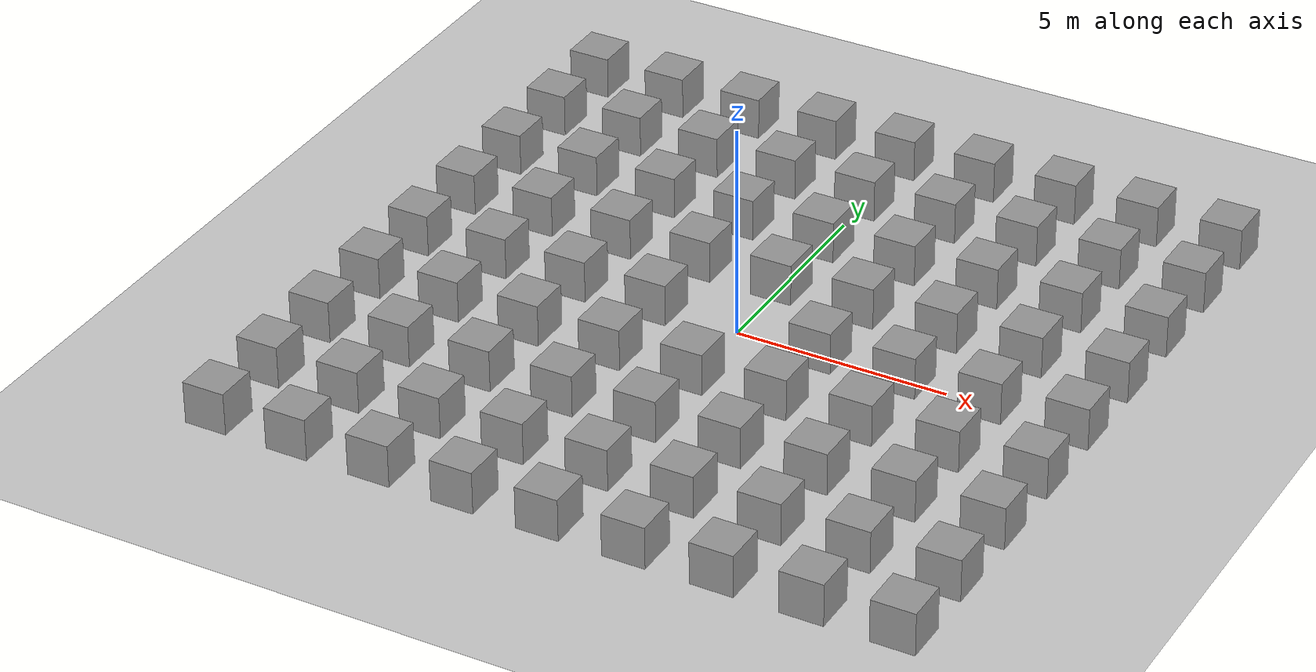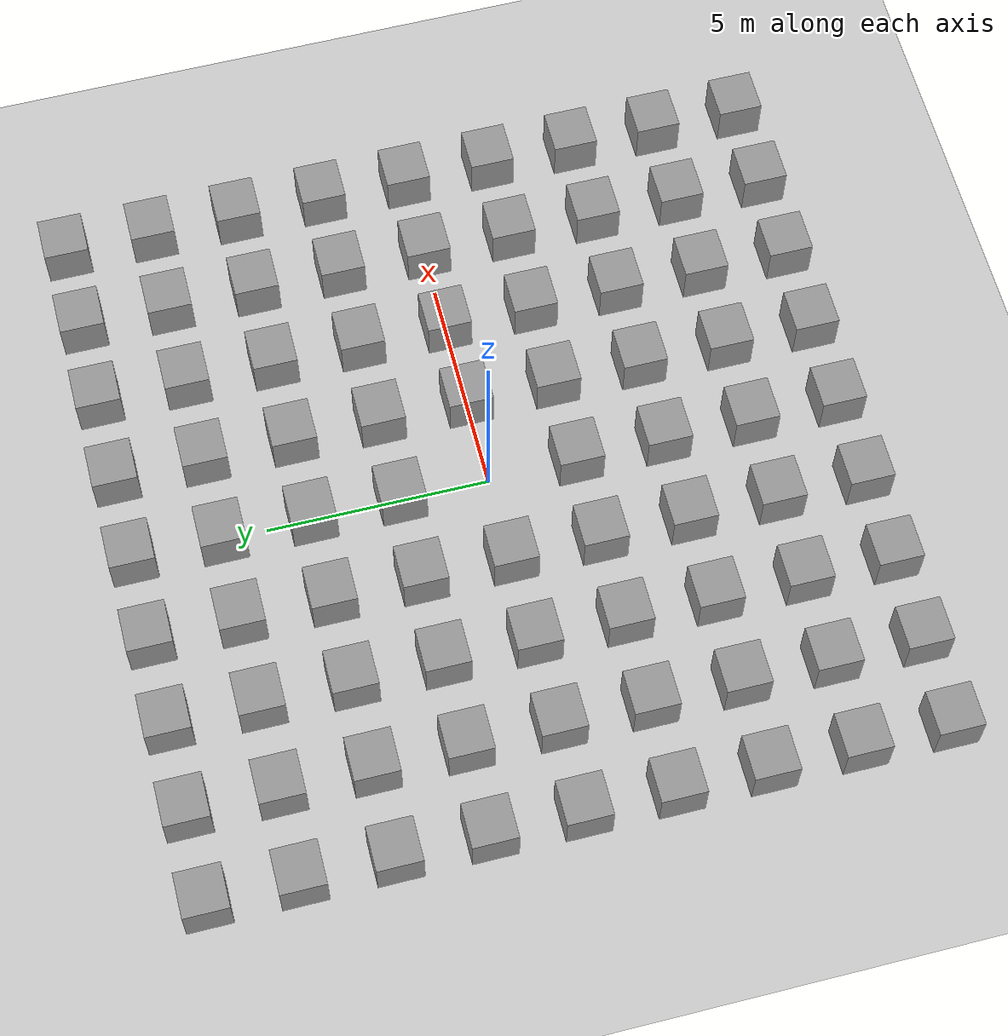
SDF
<sdf version="1.7">
 <world name="default">
  <scene><ambient>0.4 0.4 0.4 1</ambient><background>0.7 0.7 0.7 1</background><shadows>1</shadows></scene>
  <light name="sun" type="directional">
   <pose>0 0 10 0 -0 0</pose>
   <diffuse>0.8 0.8 0.8 1</diffuse>
   <specular>0.2 0.2 0.2 1</specular>
   <attenuation>
    <range>1000</range>
    <constant>0.9</constant>
    <linear>0.01</linear>
    <quadratic>0.001</quadratic>
   </attenuation>
   <direction>-0.5 0.1 -0.9</direction>
   <spot><inner_angle>0</inner_angle><outer_angle>0</outer_angle><falloff>0</falloff></spot>
  </light>
  <model name="ground_plane">
   <static>1</static>
   <link name="link">
    <collision name="collision">
     <geometry><plane><normal>0 0 1</normal><size>100 100</size></plane></geometry>
     <surface>
      <contact><collide_bitmask>65535</collide_bitmask></contact>
      <friction><ode><mu>100</mu><mu2>50</mu2></ode></friction>
     </surface>
    </collision>
    <visual name="visual">
     <cast_shadows>0</cast_shadows>
     <geometry><plane><normal>0 0 1</normal><size>100 100</size></plane></geometry>
     <material>
      <script><uri>file://media/materials/scripts/gazebo.material</uri><name>Gazebo/Grey</name></script>
     </material>
    </visual>
   </link>
  </model>
  <physics type="ode">
   <real_time_update_rate>1000</real_time_update_rate>
   <max_step_size>0.001</max_step_size>
   <real_time_factor>1</real_time_factor>
   <ode>
    <solver>
     <type>quick</type>
     <iters>150</iters>
     <precon_iters>0</precon_iters>
     <sor>1.4</sor>
     <use_dynamic_moi_rescaling>1</use_dynamic_moi_rescaling>
    </solver>
    <constraints>
     <cfm>1e-05</cfm>
     <erp>0.2</erp>
     <contact_max_correcting_vel>2000</contact_max_correcting_vel>
     <contact_surface_layer>0.01</contact_surface_layer>
    </constraints>
   </ode>
  </physics>
  <gravity>0 0 -9.8</gravity>
  <magnetic_field>6e-06 2.3e-05 -4.2e-05</magnetic_field>
  <atmosphere type="adiabatic"/>
  <spherical_coordinates>
   <surface_model>EARTH_WGS84</surface_model>
   <latitude_deg>0</latitude_deg>
   <longitude_deg>0</longitude_deg>
   <elevation>0</elevation>
   <heading_deg>0</heading_deg>
  </spherical_coordinates>
  <model name="unit_box">
   <pose>-8 -8 0.5 0 -0 0</pose>
   <link name="link">
    <inertial>
     <mass>1</mass>
     <inertia>
      <ixx>0.166667</ixx>
      <ixy>0</ixy>
      <ixz>0</ixz>
      <iyy>0.166667</iyy>
      <iyz>0</iyz>
      <izz>0.166667</izz>
     </inertia>
    </inertial>
    <collision name="collision"><geometry><box><size>1 1 1</size></box></geometry></collision>
    <visual name="visual">
     <geometry><box><size>1 1 1</size></box></geometry>
     <material>
      <script><name>Gazebo/Grey</name><uri>file://media/materials/scripts/gazebo.material</uri></script>
     </material>
    </visual>
   </link>
  </model>
  <model name="unit_box_1">
   <pose>-8 -6 0.5 0 -0 0</pose>
   <link name="link">
    <inertial>
     <mass>1</mass>
     <inertia>
      <ixx>0.166667</ixx>
      <ixy>0</ixy>
      <ixz>0</ixz>
      <iyy>0.166667</iyy>
      <iyz>0</iyz>
      <izz>0.166667</izz>
     </inertia>
    </inertial>
    <collision name="collision"><geometry><box><size>1 1 1</size></box></geometry></collision>
    <visual name="visual">
     <geometry><box><size>1 1 1</size></box></geometry>
     <material>
      <script><name>Gazebo/Grey</name><uri>file://media/materials/scripts/gazebo.material</uri></script>
     </material>
    </visual>
   </link>
  </model>
  <model name="unit_box_2">
   <pose>-8 -4 0.5 0 -0 0</pose>
   <link name="link">
    <inertial>
     <mass>1</mass>
     <inertia>
      <ixx>0.166667</ixx>
      <ixy>0</ixy>
      <ixz>0</ixz>
      <iyy>0.166667</iyy>
      <iyz>0</iyz>
      <izz>0.166667</izz>
     </inertia>
    </inertial>
    <collision name="collision"><geometry><box><size>1 1 1</size></box></geometry></collision>
    <visual name="visual">
     <geometry><box><size>1 1 1</size></box></geometry>
     <material>
      <script><name>Gazebo/Grey</name><uri>file://media/materials/scripts/gazebo.material</uri></script>
     </material>
    </visual>
   </link>
  </model>
  <model name="unit_box_3">
   <pose>-8 -2 0.5 0 -0 0</pose>
   <link name="link">
    <inertial>
     <mass>1</mass>
     <inertia>
      <ixx>0.166667</ixx>
      <ixy>0</ixy>
      <ixz>0</ixz>
      <iyy>0.166667</iyy>
      <iyz>0</iyz>
      <izz>0.166667</izz>
     </inertia>
    </inertial>
    <collision name="collision"><geometry><box><size>1 1 1</size></box></geometry></collision>
    <visual name="visual">
     <geometry><box><size>1 1 1</size></box></geometry>
     <material>
      <script><name>Gazebo/Grey</name><uri>file://media/materials/scripts/gazebo.material</uri></script>
     </material>
    </visual>
   </link>
  </model>
  <model name="unit_box_0">
   <pose>-8 0 0.5 0 -0 0</pose>
   <link name="link">
    <inertial>
     <mass>1</mass>
     <inertia>
      <ixx>0.166667</ixx>
      <ixy>0</ixy>
      <ixz>0</ixz>
      <iyy>0.166667</iyy>
      <iyz>0</iyz>
      <izz>0.166667</izz>
     </inertia>
    </inertial>
    <collision name="collision"><geometry><box><size>1 1 1</size></box></geometry></collision>
    <visual name="visual">
     <geometry><box><size>1 1 1</size></box></geometry>
     <material>
      <script><name>Gazebo/Grey</name><uri>file://media/materials/scripts/gazebo.material</uri></script>
     </material>
    </visual>
   </link>
  </model>
  <model name="unit_box_4">
   <pose>-8 2 0.5 0 -0 0</pose>
   <link name="link">
    <inertial>
     <mass>1</mass>
     <inertia>
      <ixx>0.166667</ixx>
      <ixy>0</ixy>
      <ixz>0</ixz>
      <iyy>0.166667</iyy>
      <iyz>0</iyz>
      <izz>0.166667</izz>
     </inertia>
    </inertial>
    <collision name="collision"><geometry><box><size>1 1 1</size></box></geometry></collision>
    <visual name="visual">
     <geometry><box><size>1 1 1</size></box></geometry>
     <material>
      <script><name>Gazebo/Grey</name><uri>file://media/materials/scripts/gazebo.material</uri></script>
     </material>
    </visual>
   </link>
  </model>
  <model name="unit_box_5">
   <pose>-8 4 0.5 0 -0 0</pose>
   <link name="link">
    <inertial>
     <mass>1</mass>
     <inertia>
      <ixx>0.166667</ixx>
      <ixy>0</ixy>
      <ixz>0</ixz>
      <iyy>0.166667</iyy>
      <iyz>0</iyz>
      <izz>0.166667</izz>
     </inertia>
    </inertial>
    <collision name="collision"><geometry><box><size>1 1 1</size></box></geometry></collision>
    <visual name="visual">
     <geometry><box><size>1 1 1</size></box></geometry>
     <material>
      <script><name>Gazebo/Grey</name><uri>file://media/materials/scripts/gazebo.material</uri></script>
     </material>
    </visual>
   </link>
  </model>
  <model name="unit_box_6">
   <pose>-8 6 0.5 0 -0 0</pose>
   <link name="link">
    <inertial>
     <mass>1</mass>
     <inertia>
      <ixx>0.166667</ixx>
      <ixy>0</ixy>
      <ixz>0</ixz>
      <iyy>0.166667</iyy>
      <iyz>0</iyz>
      <izz>0.166667</izz>
     </inertia>
    </inertial>
    <collision name="collision"><geometry><box><size>1 1 1</size></box></geometry></collision>
    <visual name="visual">
     <geometry><box><size>1 1 1</size></box></geometry>
     <material>
      <script><name>Gazebo/Grey</name><uri>file://media/materials/scripts/gazebo.material</uri></script>
     </material>
    </visual>
   </link>
  </model>
  <model name="unit_box_7">
   <pose>-8 8 0.5 0 -0 0</pose>
   <link name="link">
    <inertial>
     <mass>1</mass>
     <inertia>
      <ixx>0.166667</ixx>
      <ixy>0</ixy>
      <ixz>0</ixz>
      <iyy>0.166667</iyy>
      <iyz>0</iyz>
      <izz>0.166667</izz>
     </inertia>
    </inertial>
    <collision name="collision"><geometry><box><size>1 1 1</size></box></geometry></collision>
    <visual name="visual">
     <geometry><box><size>1 1 1</size></box></geometry>
     <material>
      <script><name>Gazebo/Grey</name><uri>file://media/materials/scripts/gazebo.material</uri></script>
     </material>
    </visual>
   </link>
  </model>
  <model name="unit_box_8">
   <pose>-6 -8 0.5 0 -0 0</pose>
   <link name="link">
    <inertial>
     <mass>1</mass>
     <inertia>
      <ixx>0.166667</ixx>
      <ixy>0</ixy>
      <ixz>0</ixz>
      <iyy>0.166667</iyy>
      <iyz>0</iyz>
      <izz>0.166667</izz>
     </inertia>
    </inertial>
    <collision name="collision"><geometry><box><size>1 1 1</size></box></geometry></collision>
    <visual name="visual">
     <geometry><box><size>1 1 1</size></box></geometry>
     <material>
      <script><name>Gazebo/Grey</name><uri>file://media/materials/scripts/gazebo.material</uri></script>
     </material>
    </visual>
   </link>
  </model>
  <model name="unit_box_9">
   <pose>-6 -6 0.5 0 -0 0</pose>
   <link name="link">
    <inertial>
     <mass>1</mass>
     <inertia>
      <ixx>0.166667</ixx>
      <ixy>0</ixy>
      <ixz>0</ixz>
      <iyy>0.166667</iyy>
      <iyz>0</iyz>
      <izz>0.166667</izz>
     </inertia>
    </inertial>
    <collision name="collision"><geometry><box><size>1 1 1</size></box></geometry></collision>
    <visual name="visual">
     <geometry><box><size>1 1 1</size></box></geometry>
     <material>
      <script><name>Gazebo/Grey</name><uri>file://media/materials/scripts/gazebo.material</uri></script>
     </material>
    </visual>
   </link>
  </model>
  <model name="unit_box_10">
   <pose>-6 -4 0.5 0 -0 0</pose>
   <link name="link">
    <inertial>
     <mass>1</mass>
     <inertia>
      <ixx>0.166667</ixx>
      <ixy>0</ixy>
      <ixz>0</ixz>
      <iyy>0.166667</iyy>
      <iyz>0</iyz>
      <izz>0.166667</izz>
     </inertia>
    </inertial>
    <collision name="collision"><geometry><box><size>1 1 1</size></box></geometry></collision>
    <visual name="visual">
     <geometry><box><size>1 1 1</size></box></geometry>
     <material>
      <script><name>Gazebo/Grey</name><uri>file://media/materials/scripts/gazebo.material</uri></script>
     </material>
    </visual>
   </link>
  </model>
  <model name="unit_box_11">
   <pose>-6 -2 0.5 0 -0 0</pose>
   <link name="link">
    <inertial>
     <mass>1</mass>
     <inertia>
      <ixx>0.166667</ixx>
      <ixy>0</ixy>
      <ixz>0</ixz>
      <iyy>0.166667</iyy>
      <iyz>0</iyz>
      <izz>0.166667</izz>
     </inertia>
    </inertial>
    <collision name="collision"><geometry><box><size>1 1 1</size></box></geometry></collision>
    <visual name="visual">
     <geometry><box><size>1 1 1</size></box></geometry>
     <material>
      <script><name>Gazebo/Grey</name><uri>file://media/materials/scripts/gazebo.material</uri></script>
     </material>
    </visual>
   </link>
  </model>
  <model name="unit_box_12">
   <pose>-6 -0 0.5 0 -0 0</pose>
   <link name="link">
    <inertial>
     <mass>1</mass>
     <inertia>
      <ixx>0.166667</ixx>
      <ixy>0</ixy>
      <ixz>0</ixz>
      <iyy>0.166667</iyy>
      <iyz>0</iyz>
      <izz>0.166667</izz>
     </inertia>
    </inertial>
    <collision name="collision"><geometry><box><size>1 1 1</size></box></geometry></collision>
    <visual name="visual">
     <geometry><box><size>1 1 1</size></box></geometry>
     <material>
      <script><name>Gazebo/Grey</name><uri>file://media/materials/scripts/gazebo.material</uri></script>
     </material>
    </visual>
   </link>
  </model>
  <model name="unit_box_13">
   <pose>-6 2 0.5 0 -0 0</pose>
   <link name="link">
    <inertial>
     <mass>1</mass>
     <inertia>
      <ixx>0.166667</ixx>
      <ixy>0</ixy>
      <ixz>0</ixz>
      <iyy>0.166667</iyy>
      <iyz>0</iyz>
      <izz>0.166667</izz>
     </inertia>
    </inertial>
    <collision name="collision"><geometry><box><size>1 1 1</size></box></geometry></collision>
    <visual name="visual">
     <geometry><box><size>1 1 1</size></box></geometry>
     <material>
      <script><name>Gazebo/Grey</name><uri>file://media/materials/scripts/gazebo.material</uri></script>
     </material>
    </visual>
   </link>
  </model>
  <model name="unit_box_14">
   <pose>-6 4 0.5 0 -0 0</pose>
   <link name="link">
    <inertial>
     <mass>1</mass>
     <inertia>
      <ixx>0.166667</ixx>
      <ixy>0</ixy>
      <ixz>0</ixz>
      <iyy>0.166667</iyy>
      <iyz>0</iyz>
      <izz>0.166667</izz>
     </inertia>
    </inertial>
    <collision name="collision"><geometry><box><size>1 1 1</size></box></geometry></collision>
    <visual name="visual">
     <geometry><box><size>1 1 1</size></box></geometry>
     <material>
      <script><name>Gazebo/Grey</name><uri>file://media/materials/scripts/gazebo.material</uri></script>
     </material>
    </visual>
   </link>
  </model>
  <model name="unit_box_15">
   <pose>-6 6 0.5 0 -0 0</pose>
   <link name="link">
    <inertial>
     <mass>1</mass>
     <inertia>
      <ixx>0.166667</ixx>
      <ixy>0</ixy>
      <ixz>0</ixz>
      <iyy>0.166667</iyy>
      <iyz>0</iyz>
      <izz>0.166667</izz>
     </inertia>
    </inertial>
    <collision name="collision"><geometry><box><size>1 1 1</size></box></geometry></collision>
    <visual name="visual">
     <geometry><box><size>1 1 1</size></box></geometry>
     <material>
      <script><name>Gazebo/Grey</name><uri>file://media/materials/scripts/gazebo.material</uri></script>
     </material>
    </visual>
   </link>
  </model>
  <model name="unit_box_16">
   <pose>-6 8 0.5 0 -0 0</pose>
   <link name="link">
    <inertial>
     <mass>1</mass>
     <inertia>
      <ixx>0.166667</ixx>
      <ixy>0</ixy>
      <ixz>0</ixz>
      <iyy>0.166667</iyy>
      <iyz>0</iyz>
      <izz>0.166667</izz>
     </inertia>
    </inertial>
    <collision name="collision"><geometry><box><size>1 1 1</size></box></geometry></collision>
    <visual name="visual">
     <geometry><box><size>1 1 1</size></box></geometry>
     <material>
      <script><name>Gazebo/Grey</name><uri>file://media/materials/scripts/gazebo.material</uri></script>
     </material>
    </visual>
   </link>
  </model>
  <model name="unit_box_17">
   <pose>-4 8 0.5 0 -0 0</pose>
   <link name="link">
    <inertial>
     <mass>1</mass>
     <inertia>
      <ixx>0.166667</ixx>
      <ixy>0</ixy>
      <ixz>0</ixz>
      <iyy>0.166667</iyy>
      <iyz>0</iyz>
      <izz>0.166667</izz>
     </inertia>
    </inertial>
    <collision name="collision"><geometry><box><size>1 1 1</size></box></geometry></collision>
    <visual name="visual">
     <geometry><box><size>1 1 1</size></box></geometry>
     <material>
      <script><name>Gazebo/Grey</name><uri>file://media/materials/scripts/gazebo.material</uri></script>
     </material>
    </visual>
   </link>
  </model>
  <model name="unit_box_18">
   <pose>-4 6 0.5 0 -0 0</pose>
   <link name="link">
    <inertial>
     <mass>1</mass>
     <inertia>
      <ixx>0.166667</ixx>
      <ixy>0</ixy>
      <ixz>0</ixz>
      <iyy>0.166667</iyy>
      <iyz>0</iyz>
      <izz>0.166667</izz>
     </inertia>
    </inertial>
    <collision name="collision"><geometry><box><size>1 1 1</size></box></geometry></collision>
    <visual name="visual">
     <geometry><box><size>1 1 1</size></box></geometry>
     <material>
      <script><name>Gazebo/Grey</name><uri>file://media/materials/scripts/gazebo.material</uri></script>
     </material>
    </visual>
   </link>
  </model>
  <model name="unit_box_19">
   <pose>-4 4 0.5 0 -0 0</pose>
   <link name="link">
    <inertial>
     <mass>1</mass>
     <inertia>
      <ixx>0.166667</ixx>
      <ixy>0</ixy>
      <ixz>0</ixz>
      <iyy>0.166667</iyy>
      <iyz>0</iyz>
      <izz>0.166667</izz>
     </inertia>
    </inertial>
    <collision name="collision"><geometry><box><size>1 1 1</size></box></geometry></collision>
    <visual name="visual">
     <geometry><box><size>1 1 1</size></box></geometry>
     <material>
      <script><name>Gazebo/Grey</name><uri>file://media/materials/scripts/gazebo.material</uri></script>
     </material>
    </visual>
   </link>
  </model>
  <model name="unit_box_20">
   <pose>-4 2 0.5 0 -0 0</pose>
   <link name="link">
    <inertial>
     <mass>1</mass>
     <inertia>
      <ixx>0.166667</ixx>
      <ixy>0</ixy>
      <ixz>0</ixz>
      <iyy>0.166667</iyy>
      <iyz>0</iyz>
      <izz>0.166667</izz>
     </inertia>
    </inertial>
    <collision name="collision"><geometry><box><size>1 1 1</size></box></geometry></collision>
    <visual name="visual">
     <geometry><box><size>1 1 1</size></box></geometry>
     <material>
      <script><name>Gazebo/Grey</name><uri>file://media/materials/scripts/gazebo.material</uri></script>
     </material>
    </visual>
   </link>
  </model>
  <model name="unit_box_21">
   <pose>-4 -0 0.5 0 -0 0</pose>
   <link name="link">
    <inertial>
     <mass>1</mass>
     <inertia>
      <ixx>0.166667</ixx>
      <ixy>0</ixy>
      <ixz>0</ixz>
      <iyy>0.166667</iyy>
      <iyz>0</iyz>
      <izz>0.166667</izz>
     </inertia>
    </inertial>
    <collision name="collision"><geometry><box><size>1 1 1</size></box></geometry></collision>
    <visual name="visual">
     <geometry><box><size>1 1 1</size></box></geometry>
     <material>
      <script><name>Gazebo/Grey</name><uri>file://media/materials/scripts/gazebo.material</uri></script>
     </material>
    </visual>
   </link>
  </model>
  <model name="unit_box_22">
   <pose>-4 -2 0.5 0 -0 0</pose>
   <link name="link">
    <inertial>
     <mass>1</mass>
     <inertia>
      <ixx>0.166667</ixx>
      <ixy>0</ixy>
      <ixz>0</ixz>
      <iyy>0.166667</iyy>
      <iyz>0</iyz>
      <izz>0.166667</izz>
     </inertia>
    </inertial>
    <collision name="collision"><geometry><box><size>1 1 1</size></box></geometry></collision>
    <visual name="visual">
     <geometry><box><size>1 1 1</size></box></geometry>
     <material>
      <script><name>Gazebo/Grey</name><uri>file://media/materials/scripts/gazebo.material</uri></script>
     </material>
    </visual>
   </link>
  </model>
  <model name="unit_box_23">
   <pose>-4 -4 0.5 0 -0 0</pose>
   <link name="link">
    <inertial>
     <mass>1</mass>
     <inertia>
      <ixx>0.166667</ixx>
      <ixy>0</ixy>
      <ixz>0</ixz>
      <iyy>0.166667</iyy>
      <iyz>0</iyz>
      <izz>0.166667</izz>
     </inertia>
    </inertial>
    <collision name="collision"><geometry><box><size>1 1 1</size></box></geometry></collision>
    <visual name="visual">
     <geometry><box><size>1 1 1</size></box></geometry>
     <material>
      <script><name>Gazebo/Grey</name><uri>file://media/materials/scripts/gazebo.material</uri></script>
     </material>
    </visual>
   </link>
  </model>
  <model name="unit_box_24">
   <pose>-4 -6 0.5 0 -0 0</pose>
   <link name="link">
    <inertial>
     <mass>1</mass>
     <inertia>
      <ixx>0.166667</ixx>
      <ixy>0</ixy>
      <ixz>0</ixz>
      <iyy>0.166667</iyy>
      <iyz>0</iyz>
      <izz>0.166667</izz>
     </inertia>
    </inertial>
    <collision name="collision"><geometry><box><size>1 1 1</size></box></geometry></collision>
    <visual name="visual">
     <geometry><box><size>1 1 1</size></box></geometry>
     <material>
      <script><name>Gazebo/Grey</name><uri>file://media/materials/scripts/gazebo.material</uri></script>
     </material>
    </visual>
   </link>
  </model>
  <model name="unit_box_25">
   <pose>-4 -8 0.5 0 -0 0</pose>
   <link name="link">
    <inertial>
     <mass>1</mass>
     <inertia>
      <ixx>0.166667</ixx>
      <ixy>0</ixy>
      <ixz>0</ixz>
      <iyy>0.166667</iyy>
      <iyz>0</iyz>
      <izz>0.166667</izz>
     </inertia>
    </inertial>
    <collision name="collision"><geometry><box><size>1 1 1</size></box></geometry></collision>
    <visual name="visual">
     <geometry><box><size>1 1 1</size></box></geometry>
     <material>
      <script><name>Gazebo/Grey</name><uri>file://media/materials/scripts/gazebo.material</uri></script>
     </material>
    </visual>
   </link>
  </model>
  <model name="unit_box_26">
   <pose>-2 -8 0.5 0 -0 0</pose>
   <link name="link">
    <inertial>
     <mass>1</mass>
     <inertia>
      <ixx>0.166667</ixx>
      <ixy>0</ixy>
      <ixz>0</ixz>
      <iyy>0.166667</iyy>
      <iyz>0</iyz>
      <izz>0.166667</izz>
     </inertia>
    </inertial>
    <collision name="collision"><geometry><box><size>1 1 1</size></box></geometry></collision>
    <visual name="visual">
     <geometry><box><size>1 1 1</size></box></geometry>
     <material>
      <script><name>Gazebo/Grey</name><uri>file://media/materials/scripts/gazebo.material</uri></script>
     </material>
    </visual>
   </link>
  </model>
  <model name="unit_box_27">
   <pose>-2 -6 0.5 0 -0 0</pose>
   <link name="link">
    <inertial>
     <mass>1</mass>
     <inertia>
      <ixx>0.166667</ixx>
      <ixy>0</ixy>
      <ixz>0</ixz>
      <iyy>0.166667</iyy>
      <iyz>0</iyz>
      <izz>0.166667</izz>
     </inertia>
    </inertial>
    <collision name="collision"><geometry><box><size>1 1 1</size></box></geometry></collision>
    <visual name="visual">
     <geometry><box><size>1 1 1</size></box></geometry>
     <material>
      <script><name>Gazebo/Grey</name><uri>file://media/materials/scripts/gazebo.material</uri></script>
     </material>
    </visual>
   </link>
  </model>
  <model name="unit_box_28">
   <pose>-2 -4 0.5 0 -0 0</pose>
   <link name="link">
    <inertial>
     <mass>1</mass>
     <inertia>
      <ixx>0.166667</ixx>
      <ixy>0</ixy>
      <ixz>0</ixz>
      <iyy>0.166667</iyy>
      <iyz>0</iyz>
      <izz>0.166667</izz>
     </inertia>
    </inertial>
    <collision name="collision"><geometry><box><size>1 1 1</size></box></geometry></collision>
    <visual name="visual">
     <geometry><box><size>1 1 1</size></box></geometry>
     <material>
      <script><name>Gazebo/Grey</name><uri>file://media/materials/scripts/gazebo.material</uri></script>
     </material>
    </visual>
   </link>
  </model>
  <model name="unit_box_29">
   <pose>-2 -2 0.5 0 -0 0</pose>
   <link name="link">
    <inertial>
     <mass>1</mass>
     <inertia>
      <ixx>0.166667</ixx>
      <ixy>0</ixy>
      <ixz>0</ixz>
      <iyy>0.166667</iyy>
      <iyz>0</iyz>
      <izz>0.166667</izz>
     </inertia>
    </inertial>
    <collision name="collision"><geometry><box><size>1 1 1</size></box></geometry></collision>
    <visual name="visual">
     <geometry><box><size>1 1 1</size></box></geometry>
     <material>
      <script><name>Gazebo/Grey</name><uri>file://media/materials/scripts/gazebo.material</uri></script>
     </material>
    </visual>
   </link>
  </model>
  <model name="unit_box_30">
   <pose>-2 -0 0.5 0 -0 0</pose>
   <link name="link">
    <inertial>
     <mass>1</mass>
     <inertia>
      <ixx>0.166667</ixx>
      <ixy>0</ixy>
      <ixz>0</ixz>
      <iyy>0.166667</iyy>
      <iyz>0</iyz>
      <izz>0.166667</izz>
     </inertia>
    </inertial>
    <collision name="collision"><geometry><box><size>1 1 1</size></box></geometry></collision>
    <visual name="visual">
     <geometry><box><size>1 1 1</size></box></geometry>
     <material>
      <script><name>Gazebo/Grey</name><uri>file://media/materials/scripts/gazebo.material</uri></script>
     </material>
    </visual>
   </link>
  </model>
  <model name="unit_box_31">
   <pose>-2 2 0.5 0 -0 0</pose>
   <link name="link">
    <inertial>
     <mass>1</mass>
     <inertia>
      <ixx>0.166667</ixx>
      <ixy>0</ixy>
      <ixz>0</ixz>
      <iyy>0.166667</iyy>
      <iyz>0</iyz>
      <izz>0.166667</izz>
     </inertia>
    </inertial>
    <collision name="collision"><geometry><box><size>1 1 1</size></box></geometry></collision>
    <visual name="visual">
     <geometry><box><size>1 1 1</size></box></geometry>
     <material>
      <script><name>Gazebo/Grey</name><uri>file://media/materials/scripts/gazebo.material</uri></script>
     </material>
    </visual>
   </link>
  </model>
  <model name="unit_box_32">
   <pose>-2 4 0.5 0 -0 0</pose>
   <link name="link">
    <inertial>
     <mass>1</mass>
     <inertia>
      <ixx>0.166667</ixx>
      <ixy>0</ixy>
      <ixz>0</ixz>
      <iyy>0.166667</iyy>
      <iyz>0</iyz>
      <izz>0.166667</izz>
     </inertia>
    </inertial>
    <collision name="collision"><geometry><box><size>1 1 1</size></box></geometry></collision>
    <visual name="visual">
     <geometry><box><size>1 1 1</size></box></geometry>
     <material>
      <script><name>Gazebo/Grey</name><uri>file://media/materials/scripts/gazebo.material</uri></script>
     </material>
    </visual>
   </link>
  </model>
  <model name="unit_box_33">
   <pose>-2 6 0.5 0 -0 0</pose>
   <link name="link">
    <inertial>
     <mass>1</mass>
     <inertia>
      <ixx>0.166667</ixx>
      <ixy>0</ixy>
      <ixz>0</ixz>
      <iyy>0.166667</iyy>
      <iyz>0</iyz>
      <izz>0.166667</izz>
     </inertia>
    </inertial>
    <collision name="collision"><geometry><box><size>1 1 1</size></box></geometry></collision>
    <visual name="visual">
     <geometry><box><size>1 1 1</size></box></geometry>
     <material>
      <script><name>Gazebo/Grey</name><uri>file://media/materials/scripts/gazebo.material</uri></script>
     </material>
    </visual>
   </link>
  </model>
  <model name="unit_box_34">
   <pose>-2 8 0.5 0 -0 0</pose>
   <link name="link">
    <inertial>
     <mass>1</mass>
     <inertia>
      <ixx>0.166667</ixx>
      <ixy>0</ixy>
      <ixz>0</ixz>
      <iyy>0.166667</iyy>
      <iyz>0</iyz>
      <izz>0.166667</izz>
     </inertia>
    </inertial>
    <collision name="collision"><geometry><box><size>1 1 1</size></box></geometry></collision>
    <visual name="visual">
     <geometry><box><size>1 1 1</size></box></geometry>
     <material>
      <script><name>Gazebo/Grey</name><uri>file://media/materials/scripts/gazebo.material</uri></script>
     </material>
    </visual>
   </link>
  </model>
  <model name="unit_box_35">
   <pose>0 -8 0.5 0 -0 0</pose>
   <link name="link">
    <inertial>
     <mass>1</mass>
     <inertia>
      <ixx>0.166667</ixx>
      <ixy>0</ixy>
      <ixz>0</ixz>
      <iyy>0.166667</iyy>
      <iyz>0</iyz>
      <izz>0.166667</izz>
     </inertia>
    </inertial>
    <collision name="collision"><geometry><box><size>1 1 1</size></box></geometry></collision>
    <visual name="visual">
     <geometry><box><size>1 1 1</size></box></geometry>
     <material>
      <script><name>Gazebo/Grey</name><uri>file://media/materials/scripts/gazebo.material</uri></script>
     </material>
    </visual>
   </link>
  </model>
  <model name="unit_box_36">
   <pose>-0 -6 0.5 0 -0 0</pose>
   <link name="link">
    <inertial>
     <mass>1</mass>
     <inertia>
      <ixx>0.166667</ixx>
      <ixy>0</ixy>
      <ixz>0</ixz>
      <iyy>0.166667</iyy>
      <iyz>0</iyz>
      <izz>0.166667</izz>
     </inertia>
    </inertial>
    <collision name="collision"><geometry><box><size>1 1 1</size></box></geometry></collision>
    <visual name="visual">
     <geometry><box><size>1 1 1</size></box></geometry>
     <material>
      <script><name>Gazebo/Grey</name><uri>file://media/materials/scripts/gazebo.material</uri></script>
     </material>
    </visual>
   </link>
  </model>
  <model name="unit_box_37">
   <pose>-0 -4 0.5 0 -0 0</pose>
   <link name="link">
    <inertial>
     <mass>1</mass>
     <inertia>
      <ixx>0.166667</ixx>
      <ixy>0</ixy>
      <ixz>0</ixz>
      <iyy>0.166667</iyy>
      <iyz>0</iyz>
      <izz>0.166667</izz>
     </inertia>
    </inertial>
    <collision name="collision"><geometry><box><size>1 1 1</size></box></geometry></collision>
    <visual name="visual">
     <geometry><box><size>1 1 1</size></box></geometry>
     <material>
      <script><name>Gazebo/Grey</name><uri>file://media/materials/scripts/gazebo.material</uri></script>
     </material>
    </visual>
   </link>
  </model>
  <model name="unit_box_38">
   <pose>-0 -2 0.5 0 -0 0</pose>
   <link name="link">
    <inertial>
     <mass>1</mass>
     <inertia>
      <ixx>0.166667</ixx>
      <ixy>0</ixy>
      <ixz>0</ixz>
      <iyy>0.166667</iyy>
      <iyz>0</iyz>
      <izz>0.166667</izz>
     </inertia>
    </inertial>
    <collision name="collision"><geometry><box><size>1 1 1</size></box></geometry></collision>
    <visual name="visual">
     <geometry><box><size>1 1 1</size></box></geometry>
     <material>
      <script><name>Gazebo/Grey</name><uri>file://media/materials/scripts/gazebo.material</uri></script>
     </material>
    </visual>
   </link>
  </model>
  <model name="unit_box_39">
   <pose>0 2 0.5 0 -0 0</pose>
   <link name="link">
    <inertial>
     <mass>1</mass>
     <inertia>
      <ixx>0.166667</ixx>
      <ixy>0</ixy>
      <ixz>0</ixz>
      <iyy>0.166667</iyy>
      <iyz>0</iyz>
      <izz>0.166667</izz>
     </inertia>
    </inertial>
    <collision name="collision"><geometry><box><size>1 1 1</size></box></geometry></collision>
    <visual name="visual">
     <geometry><box><size>1 1 1</size></box></geometry>
     <material>
      <script><name>Gazebo/Grey</name><uri>file://media/materials/scripts/gazebo.material</uri></script>
     </material>
    </visual>
   </link>
  </model>
  <model name="unit_box_40">
   <pose>-0 4 0.5 0 -0 0</pose>
   <link name="link">
    <inertial>
     <mass>1</mass>
     <inertia>
      <ixx>0.166667</ixx>
      <ixy>0</ixy>
      <ixz>0</ixz>
      <iyy>0.166667</iyy>
      <iyz>0</iyz>
      <izz>0.166667</izz>
     </inertia>
    </inertial>
    <collision name="collision"><geometry><box><size>1 1 1</size></box></geometry></collision>
    <visual name="visual">
     <geometry><box><size>1 1 1</size></box></geometry>
     <material>
      <script><name>Gazebo/Grey</name><uri>file://media/materials/scripts/gazebo.material</uri></script>
     </material>
    </visual>
   </link>
  </model>
  <model name="unit_box_41">
   <pose>-0 6 0.5 0 -0 0</pose>
   <link name="link">
    <inertial>
     <mass>1</mass>
     <inertia>
      <ixx>0.166667</ixx>
      <ixy>0</ixy>
      <ixz>0</ixz>
      <iyy>0.166667</iyy>
      <iyz>0</iyz>
      <izz>0.166667</izz>
     </inertia>
    </inertial>
    <collision name="collision"><geometry><box><size>1 1 1</size></box></geometry></collision>
    <visual name="visual">
     <geometry><box><size>1 1 1</size></box></geometry>
     <material>
      <script><name>Gazebo/Grey</name><uri>file://media/materials/scripts/gazebo.material</uri></script>
     </material>
    </visual>
   </link>
  </model>
  <model name="unit_box_42">
   <pose>-0 8 0.5 0 -0 0</pose>
   <link name="link">
    <inertial>
     <mass>1</mass>
     <inertia>
      <ixx>0.166667</ixx>
      <ixy>0</ixy>
      <ixz>0</ixz>
      <iyy>0.166667</iyy>
      <iyz>0</iyz>
      <izz>0.166667</izz>
     </inertia>
    </inertial>
    <collision name="collision"><geometry><box><size>1 1 1</size></box></geometry></collision>
    <visual name="visual">
     <geometry><box><size>1 1 1</size></box></geometry>
     <material>
      <script><name>Gazebo/Grey</name><uri>file://media/materials/scripts/gazebo.material</uri></script>
     </material>
    </visual>
   </link>
  </model>
  <model name="unit_box_43">
   <pose>2 -8 0.5 0 -0 0</pose>
   <link name="link">
    <inertial>
     <mass>1</mass>
     <inertia>
      <ixx>0.166667</ixx>
      <ixy>0</ixy>
      <ixz>0</ixz>
      <iyy>0.166667</iyy>
      <iyz>0</iyz>
      <izz>0.166667</izz>
     </inertia>
    </inertial>
    <collision name="collision"><geometry><box><size>1 1 1</size></box></geometry></collision>
    <visual name="visual">
     <geometry><box><size>1 1 1</size></box></geometry>
     <material>
      <script><name>Gazebo/Grey</name><uri>file://media/materials/scripts/gazebo.material</uri></script>
     </material>
    </visual>
   </link>
  </model>
  <model name="unit_box_44">
   <pose>2 -6 0.5 0 -0 0</pose>
   <link name="link">
    <inertial>
     <mass>1</mass>
     <inertia>
      <ixx>0.166667</ixx>
      <ixy>0</ixy>
      <ixz>0</ixz>
      <iyy>0.166667</iyy>
      <iyz>0</iyz>
      <izz>0.166667</izz>
     </inertia>
    </inertial>
    <collision name="collision"><geometry><box><size>1 1 1</size></box></geometry></collision>
    <visual name="visual">
     <geometry><box><size>1 1 1</size></box></geometry>
     <material>
      <script><name>Gazebo/Grey</name><uri>file://media/materials/scripts/gazebo.material</uri></script>
     </material>
    </visual>
   </link>
  </model>
  <model name="unit_box_45">
   <pose>2 -4 0.5 0 -0 0</pose>
   <link name="link">
    <inertial>
     <mass>1</mass>
     <inertia>
      <ixx>0.166667</ixx>
      <ixy>0</ixy>
      <ixz>0</ixz>
      <iyy>0.166667</iyy>
      <iyz>0</iyz>
      <izz>0.166667</izz>
     </inertia>
    </inertial>
    <collision name="collision"><geometry><box><size>1 1 1</size></box></geometry></collision>
    <visual name="visual">
     <geometry><box><size>1 1 1</size></box></geometry>
     <material>
      <script><name>Gazebo/Grey</name><uri>file://media/materials/scripts/gazebo.material</uri></script>
     </material>
    </visual>
   </link>
  </model>
  <model name="unit_box_46">
   <pose>2 -2 0.5 0 -0 0</pose>
   <link name="link">
    <inertial>
     <mass>1</mass>
     <inertia>
      <ixx>0.166667</ixx>
      <ixy>0</ixy>
      <ixz>0</ixz>
      <iyy>0.166667</iyy>
      <iyz>0</iyz>
      <izz>0.166667</izz>
     </inertia>
    </inertial>
    <collision name="collision"><geometry><box><size>1 1 1</size></box></geometry></collision>
    <visual name="visual">
     <geometry><box><size>1 1 1</size></box></geometry>
     <material>
      <script><name>Gazebo/Grey</name><uri>file://media/materials/scripts/gazebo.material</uri></script>
     </material>
    </visual>
   </link>
  </model>
  <model name="unit_box_47">
   <pose>2 0 0.5 0 -0 0</pose>
   <link name="link">
    <inertial>
     <mass>1</mass>
     <inertia>
      <ixx>0.166667</ixx>
      <ixy>0</ixy>
      <ixz>0</ixz>
      <iyy>0.166667</iyy>
      <iyz>0</iyz>
      <izz>0.166667</izz>
     </inertia>
    </inertial>
    <collision name="collision"><geometry><box><size>1 1 1</size></box></geometry></collision>
    <visual name="visual">
     <geometry><box><size>1 1 1</size></box></geometry>
     <material>
      <script><name>Gazebo/Grey</name><uri>file://media/materials/scripts/gazebo.material</uri></script>
     </material>
    </visual>
   </link>
  </model>
  <model name="unit_box_48">
   <pose>2 2 0.5 0 -0 0</pose>
   <link name="link">
    <inertial>
     <mass>1</mass>
     <inertia>
      <ixx>0.166667</ixx>
      <ixy>0</ixy>
      <ixz>0</ixz>
      <iyy>0.166667</iyy>
      <iyz>0</iyz>
      <izz>0.166667</izz>
     </inertia>
    </inertial>
    <collision name="collision"><geometry><box><size>1 1 1</size></box></geometry></collision>
    <visual name="visual">
     <geometry><box><size>1 1 1</size></box></geometry>
     <material>
      <script><name>Gazebo/Grey</name><uri>file://media/materials/scripts/gazebo.material</uri></script>
     </material>
    </visual>
   </link>
  </model>
  <model name="unit_box_49">
   <pose>2 4 0.5 0 -0 0</pose>
   <link name="link">
    <inertial>
     <mass>1</mass>
     <inertia>
      <ixx>0.166667</ixx>
      <ixy>0</ixy>
      <ixz>0</ixz>
      <iyy>0.166667</iyy>
      <iyz>0</iyz>
      <izz>0.166667</izz>
     </inertia>
    </inertial>
    <collision name="collision"><geometry><box><size>1 1 1</size></box></geometry></collision>
    <visual name="visual">
     <geometry><box><size>1 1 1</size></box></geometry>
     <material>
      <script><name>Gazebo/Grey</name><uri>file://media/materials/scripts/gazebo.material</uri></script>
     </material>
    </visual>
   </link>
  </model>
  <model name="unit_box_50">
   <pose>2 6 0.5 0 -0 0</pose>
   <link name="link">
    <inertial>
     <mass>1</mass>
     <inertia>
      <ixx>0.166667</ixx>
      <ixy>0</ixy>
      <ixz>0</ixz>
      <iyy>0.166667</iyy>
      <iyz>0</iyz>
      <izz>0.166667</izz>
     </inertia>
    </inertial>
    <collision name="collision"><geometry><box><size>1 1 1</size></box></geometry></collision>
    <visual name="visual">
     <geometry><box><size>1 1 1</size></box></geometry>
     <material>
      <script><name>Gazebo/Grey</name><uri>file://media/materials/scripts/gazebo.material</uri></script>
     </material>
    </visual>
   </link>
  </model>
  <model name="unit_box_51">
   <pose>2 8 0.5 0 -0 0</pose>
   <link name="link">
    <inertial>
     <mass>1</mass>
     <inertia>
      <ixx>0.166667</ixx>
      <ixy>0</ixy>
      <ixz>0</ixz>
      <iyy>0.166667</iyy>
      <iyz>0</iyz>
      <izz>0.166667</izz>
     </inertia>
    </inertial>
    <collision name="collision"><geometry><box><size>1 1 1</size></box></geometry></collision>
    <visual name="visual">
     <geometry><box><size>1 1 1</size></box></geometry>
     <material>
      <script><name>Gazebo/Grey</name><uri>file://media/materials/scripts/gazebo.material</uri></script>
     </material>
    </visual>
   </link>
  </model>
  <model name="unit_box_52">
   <pose>4 -8 0.5 0 -0 0</pose>
   <link name="link">
    <inertial>
     <mass>1</mass>
     <inertia>
      <ixx>0.166667</ixx>
      <ixy>0</ixy>
      <ixz>0</ixz>
      <iyy>0.166667</iyy>
      <iyz>0</iyz>
      <izz>0.166667</izz>
     </inertia>
    </inertial>
    <collision name="collision"><geometry><box><size>1 1 1</size></box></geometry></collision>
    <visual name="visual">
     <geometry><box><size>1 1 1</size></box></geometry>
     <material>
      <script><name>Gazebo/Grey</name><uri>file://media/materials/scripts/gazebo.material</uri></script>
     </material>
    </visual>
   </link>
  </model>
  <model name="unit_box_53">
   <pose>4 -6 0.5 0 -0 0</pose>
   <link name="link">
    <inertial>
     <mass>1</mass>
     <inertia>
      <ixx>0.166667</ixx>
      <ixy>0</ixy>
      <ixz>0</ixz>
      <iyy>0.166667</iyy>
      <iyz>0</iyz>
      <izz>0.166667</izz>
     </inertia>
    </inertial>
    <collision name="collision"><geometry><box><size>1 1 1</size></box></geometry></collision>
    <visual name="visual">
     <geometry><box><size>1 1 1</size></box></geometry>
     <material>
      <script><name>Gazebo/Grey</name><uri>file://media/materials/scripts/gazebo.material</uri></script>
     </material>
    </visual>
   </link>
  </model>
  <model name="unit_box_54">
   <pose>4 -4 0.5 0 -0 0</pose>
   <link name="link">
    <inertial>
     <mass>1</mass>
     <inertia>
      <ixx>0.166667</ixx>
      <ixy>0</ixy>
      <ixz>0</ixz>
      <iyy>0.166667</iyy>
      <iyz>0</iyz>
      <izz>0.166667</izz>
     </inertia>
    </inertial>
    <collision name="collision"><geometry><box><size>1 1 1</size></box></geometry></collision>
    <visual name="visual">
     <geometry><box><size>1 1 1</size></box></geometry>
     <material>
      <script><name>Gazebo/Grey</name><uri>file://media/materials/scripts/gazebo.material</uri></script>
     </material>
    </visual>
   </link>
  </model>
  <model name="unit_box_55">
   <pose>4 -2 0.5 0 -0 0</pose>
   <link name="link">
    <inertial>
     <mass>1</mass>
     <inertia>
      <ixx>0.166667</ixx>
      <ixy>0</ixy>
      <ixz>0</ixz>
      <iyy>0.166667</iyy>
      <iyz>0</iyz>
      <izz>0.166667</izz>
     </inertia>
    </inertial>
    <collision name="collision"><geometry><box><size>1 1 1</size></box></geometry></collision>
    <visual name="visual">
     <geometry><box><size>1 1 1</size></box></geometry>
     <material>
      <script><name>Gazebo/Grey</name><uri>file://media/materials/scripts/gazebo.material</uri></script>
     </material>
    </visual>
   </link>
  </model>
  <model name="unit_box_56">
   <pose>4 0 0.5 0 -0 0</pose>
   <link name="link">
    <inertial>
     <mass>1</mass>
     <inertia>
      <ixx>0.166667</ixx>
      <ixy>0</ixy>
      <ixz>0</ixz>
      <iyy>0.166667</iyy>
      <iyz>0</iyz>
      <izz>0.166667</izz>
     </inertia>
    </inertial>
    <collision name="collision"><geometry><box><size>1 1 1</size></box></geometry></collision>
    <visual name="visual">
     <geometry><box><size>1 1 1</size></box></geometry>
     <material>
      <script><name>Gazebo/Grey</name><uri>file://media/materials/scripts/gazebo.material</uri></script>
     </material>
    </visual>
   </link>
  </model>
  <model name="unit_box_57">
   <pose>4 2 0.5 0 -0 0</pose>
   <link name="link">
    <inertial>
     <mass>1</mass>
     <inertia>
      <ixx>0.166667</ixx>
      <ixy>0</ixy>
      <ixz>0</ixz>
      <iyy>0.166667</iyy>
      <iyz>0</iyz>
      <izz>0.166667</izz>
     </inertia>
    </inertial>
    <collision name="collision"><geometry><box><size>1 1 1</size></box></geometry></collision>
    <visual name="visual">
     <geometry><box><size>1 1 1</size></box></geometry>
     <material>
      <script><name>Gazebo/Grey</name><uri>file://media/materials/scripts/gazebo.material</uri></script>
     </material>
    </visual>
   </link>
  </model>
  <model name="unit_box_58">
   <pose>4 4 0.5 0 -0 0</pose>
   <link name="link">
    <inertial>
     <mass>1</mass>
     <inertia>
      <ixx>0.166667</ixx>
      <ixy>0</ixy>
      <ixz>0</ixz>
      <iyy>0.166667</iyy>
      <iyz>0</iyz>
      <izz>0.166667</izz>
     </inertia>
    </inertial>
    <collision name="collision"><geometry><box><size>1 1 1</size></box></geometry></collision>
    <visual name="visual">
     <geometry><box><size>1 1 1</size></box></geometry>
     <material>
      <script><name>Gazebo/Grey</name><uri>file://media/materials/scripts/gazebo.material</uri></script>
     </material>
    </visual>
   </link>
  </model>
  <model name="unit_box_59">
   <pose>4 6 0.5 0 -0 0</pose>
   <link name="link">
    <inertial>
     <mass>1</mass>
     <inertia>
      <ixx>0.166667</ixx>
      <ixy>0</ixy>
      <ixz>0</ixz>
      <iyy>0.166667</iyy>
      <iyz>0</iyz>
      <izz>0.166667</izz>
     </inertia>
    </inertial>
    <collision name="collision"><geometry><box><size>1 1 1</size></box></geometry></collision>
    <visual name="visual">
     <geometry><box><size>1 1 1</size></box></geometry>
     <material>
      <script><name>Gazebo/Grey</name><uri>file://media/materials/scripts/gazebo.material</uri></script>
     </material>
    </visual>
   </link>
  </model>
  <model name="unit_box_60">
   <pose>4 8 0.5 0 -0 0</pose>
   <link name="link">
    <inertial>
     <mass>1</mass>
     <inertia>
      <ixx>0.166667</ixx>
      <ixy>0</ixy>
      <ixz>0</ixz>
      <iyy>0.166667</iyy>
      <iyz>0</iyz>
      <izz>0.166667</izz>
     </inertia>
    </inertial>
    <collision name="collision"><geometry><box><size>1 1 1</size></box></geometry></collision>
    <visual name="visual">
     <geometry><box><size>1 1 1</size></box></geometry>
     <material>
      <script><name>Gazebo/Grey</name><uri>file://media/materials/scripts/gazebo.material</uri></script>
     </material>
    </visual>
   </link>
  </model>
  <model name="unit_box_61">
   <pose>6 -8 0.5 0 -0 0</pose>
   <link name="link">
    <inertial>
     <mass>1</mass>
     <inertia>
      <ixx>0.166667</ixx>
      <ixy>0</ixy>
      <ixz>0</ixz>
      <iyy>0.166667</iyy>
      <iyz>0</iyz>
      <izz>0.166667</izz>
     </inertia>
    </inertial>
    <collision name="collision"><geometry><box><size>1 1 1</size></box></geometry></collision>
    <visual name="visual">
     <geometry><box><size>1 1 1</size></box></geometry>
     <material>
      <script><name>Gazebo/Grey</name><uri>file://media/materials/scripts/gazebo.material</uri></script>
     </material>
    </visual>
   </link>
  </model>
  <model name="unit_box_62">
   <pose>6 -6 0.5 0 -0 0</pose>
   <link name="link">
    <inertial>
     <mass>1</mass>
     <inertia>
      <ixx>0.166667</ixx>
      <ixy>0</ixy>
      <ixz>0</ixz>
      <iyy>0.166667</iyy>
      <iyz>0</iyz>
      <izz>0.166667</izz>
     </inertia>
    </inertial>
    <collision name="collision"><geometry><box><size>1 1 1</size></box></geometry></collision>
    <visual name="visual">
     <geometry><box><size>1 1 1</size></box></geometry>
     <material>
      <script><name>Gazebo/Grey</name><uri>file://media/materials/scripts/gazebo.material</uri></script>
     </material>
    </visual>
   </link>
  </model>
  <model name="unit_box_63">
   <pose>6 -4 0.5 0 -0 0</pose>
   <link name="link">
    <inertial>
     <mass>1</mass>
     <inertia>
      <ixx>0.166667</ixx>
      <ixy>0</ixy>
      <ixz>0</ixz>
      <iyy>0.166667</iyy>
      <iyz>0</iyz>
      <izz>0.166667</izz>
     </inertia>
    </inertial>
    <collision name="collision"><geometry><box><size>1 1 1</size></box></geometry></collision>
    <visual name="visual">
     <geometry><box><size>1 1 1</size></box></geometry>
     <material>
      <script><name>Gazebo/Grey</name><uri>file://media/materials/scripts/gazebo.material</uri></script>
     </material>
    </visual>
   </link>
  </model>
  <model name="unit_box_64">
   <pose>6 -2 0.5 0 -0 0</pose>
   <link name="link">
    <inertial>
     <mass>1</mass>
     <inertia>
      <ixx>0.166667</ixx>
      <ixy>0</ixy>
      <ixz>0</ixz>
      <iyy>0.166667</iyy>
      <iyz>0</iyz>
      <izz>0.166667</izz>
     </inertia>
    </inertial>
    <collision name="collision"><geometry><box><size>1 1 1</size></box></geometry></collision>
    <visual name="visual">
     <geometry><box><size>1 1 1</size></box></geometry>
     <material>
      <script><name>Gazebo/Grey</name><uri>file://media/materials/scripts/gazebo.material</uri></script>
     </material>
    </visual>
   </link>
  </model>
  <model name="unit_box_65">
   <pose>6 -0 0.5 0 -0 0</pose>
   <link name="link">
    <inertial>
     <mass>1</mass>
     <inertia>
      <ixx>0.166667</ixx>
      <ixy>0</ixy>
      <ixz>0</ixz>
      <iyy>0.166667</iyy>
      <iyz>0</iyz>
      <izz>0.166667</izz>
     </inertia>
    </inertial>
    <collision name="collision"><geometry><box><size>1 1 1</size></box></geometry></collision>
    <visual name="visual">
     <geometry><box><size>1 1 1</size></box></geometry>
     <material>
      <script><name>Gazebo/Grey</name><uri>file://media/materials/scripts/gazebo.material</uri></script>
     </material>
    </visual>
   </link>
  </model>
  <model name="unit_box_66">
   <pose>6 2 0.5 0 -0 0</pose>
   <link name="link">
    <inertial>
     <mass>1</mass>
     <inertia>
      <ixx>0.166667</ixx>
      <ixy>0</ixy>
      <ixz>0</ixz>
      <iyy>0.166667</iyy>
      <iyz>0</iyz>
      <izz>0.166667</izz>
     </inertia>
    </inertial>
    <collision name="collision"><geometry><box><size>1 1 1</size></box></geometry></collision>
    <visual name="visual">
     <geometry><box><size>1 1 1</size></box></geometry>
     <material>
      <script><name>Gazebo/Grey</name><uri>file://media/materials/scripts/gazebo.material</uri></script>
     </material>
    </visual>
   </link>
  </model>
  <model name="unit_box_67">
   <pose>6 4 0.5 0 -0 0</pose>
   <link name="link">
    <inertial>
     <mass>1</mass>
     <inertia>
      <ixx>0.166667</ixx>
      <ixy>0</ixy>
      <ixz>0</ixz>
      <iyy>0.166667</iyy>
      <iyz>0</iyz>
      <izz>0.166667</izz>
     </inertia>
    </inertial>
    <collision name="collision"><geometry><box><size>1 1 1</size></box></geometry></collision>
    <visual name="visual">
     <geometry><box><size>1 1 1</size></box></geometry>
     <material>
      <script><name>Gazebo/Grey</name><uri>file://media/materials/scripts/gazebo.material</uri></script>
     </material>
    </visual>
   </link>
  </model>
  <model name="unit_box_68">
   <pose>6 6 0.5 0 -0 0</pose>
   <link name="link">
    <inertial>
     <mass>1</mass>
     <inertia>
      <ixx>0.166667</ixx>
      <ixy>0</ixy>
      <ixz>0</ixz>
      <iyy>0.166667</iyy>
      <iyz>0</iyz>
      <izz>0.166667</izz>
     </inertia>
    </inertial>
    <collision name="collision"><geometry><box><size>1 1 1</size></box></geometry></collision>
    <visual name="visual">
     <geometry><box><size>1 1 1</size></box></geometry>
     <material>
      <script><name>Gazebo/Grey</name><uri>file://media/materials/scripts/gazebo.material</uri></script>
     </material>
    </visual>
   </link>
  </model>
  <model name="unit_box_69">
   <pose>6 8 0.5 0 -0 0</pose>
   <link name="link">
    <inertial>
     <mass>1</mass>
     <inertia>
      <ixx>0.166667</ixx>
      <ixy>0</ixy>
      <ixz>0</ixz>
      <iyy>0.166667</iyy>
      <iyz>0</iyz>
      <izz>0.166667</izz>
     </inertia>
    </inertial>
    <collision name="collision"><geometry><box><size>1 1 1</size></box></geometry></collision>
    <visual name="visual">
     <geometry><box><size>1 1 1</size></box></geometry>
     <material>
      <script><name>Gazebo/Grey</name><uri>file://media/materials/scripts/gazebo.material</uri></script>
     </material>
    </visual>
   </link>
  </model>
  <model name="unit_box_70">
   <pose>8 -8 0.5 0 -0 0</pose>
   <link name="link">
    <inertial>
     <mass>1</mass>
     <inertia>
      <ixx>0.166667</ixx>
      <ixy>0</ixy>
      <ixz>0</ixz>
      <iyy>0.166667</iyy>
      <iyz>0</iyz>
      <izz>0.166667</izz>
     </inertia>
    </inertial>
    <collision name="collision"><geometry><box><size>1 1 1</size></box></geometry></collision>
    <visual name="visual">
     <geometry><box><size>1 1 1</size></box></geometry>
     <material>
      <script><name>Gazebo/Grey</name><uri>file://media/materials/scripts/gazebo.material</uri></script>
     </material>
    </visual>
   </link>
  </model>
  <model name="unit_box_71">
   <pose>8 -6 0.5 0 -0 0</pose>
   <link name="link">
    <inertial>
     <mass>1</mass>
     <inertia>
      <ixx>0.166667</ixx>
      <ixy>0</ixy>
      <ixz>0</ixz>
      <iyy>0.166667</iyy>
      <iyz>0</iyz>
      <izz>0.166667</izz>
     </inertia>
    </inertial>
    <collision name="collision"><geometry><box><size>1 1 1</size></box></geometry></collision>
    <visual name="visual">
     <geometry><box><size>1 1 1</size></box></geometry>
     <material>
      <script><name>Gazebo/Grey</name><uri>file://media/materials/scripts/gazebo.material</uri></script>
     </material>
    </visual>
   </link>
  </model>
  <model name="unit_box_72">
   <pose>8 -4 0.5 0 -0 0</pose>
   <link name="link">
    <inertial>
     <mass>1</mass>
     <inertia>
      <ixx>0.166667</ixx>
      <ixy>0</ixy>
      <ixz>0</ixz>
      <iyy>0.166667</iyy>
      <iyz>0</iyz>
      <izz>0.166667</izz>
     </inertia>
    </inertial>
    <collision name="collision"><geometry><box><size>1 1 1</size></box></geometry></collision>
    <visual name="visual">
     <geometry><box><size>1 1 1</size></box></geometry>
     <material>
      <script><name>Gazebo/Grey</name><uri>file://media/materials/scripts/gazebo.material</uri></script>
     </material>
    </visual>
   </link>
  </model>
  <model name="unit_box_73">
   <pose>8 -2 0.5 0 -0 0</pose>
   <link name="link">
    <inertial>
     <mass>1</mass>
     <inertia>
      <ixx>0.166667</ixx>
      <ixy>0</ixy>
      <ixz>0</ixz>
      <iyy>0.166667</iyy>
      <iyz>0</iyz>
      <izz>0.166667</izz>
     </inertia>
    </inertial>
    <collision name="collision"><geometry><box><size>1 1 1</size></box></geometry></collision>
    <visual name="visual">
     <geometry><box><size>1 1 1</size></box></geometry>
     <material>
      <script><name>Gazebo/Grey</name><uri>file://media/materials/scripts/gazebo.material</uri></script>
     </material>
    </visual>
   </link>
  </model>
  <model name="unit_box_74">
   <pose>8 0 0.5 0 -0 0</pose>
   <link name="link">
    <inertial>
     <mass>1</mass>
     <inertia>
      <ixx>0.166667</ixx>
      <ixy>0</ixy>
      <ixz>0</ixz>
      <iyy>0.166667</iyy>
      <iyz>0</iyz>
      <izz>0.166667</izz>
     </inertia>
    </inertial>
    <collision name="collision"><geometry><box><size>1 1 1</size></box></geometry></collision>
    <visual name="visual">
     <geometry><box><size>1 1 1</size></box></geometry>
     <material>
      <script><name>Gazebo/Grey</name><uri>file://media/materials/scripts/gazebo.material</uri></script>
     </material>
    </visual>
   </link>
  </model>
  <model name="unit_box_75">
   <pose>8 2 0.5 0 -0 0</pose>
   <link name="link">
    <inertial>
     <mass>1</mass>
     <inertia>
      <ixx>0.166667</ixx>
      <ixy>0</ixy>
      <ixz>0</ixz>
      <iyy>0.166667</iyy>
      <iyz>0</iyz>
      <izz>0.166667</izz>
     </inertia>
    </inertial>
    <collision name="collision"><geometry><box><size>1 1 1</size></box></geometry></collision>
    <visual name="visual">
     <geometry><box><size>1 1 1</size></box></geometry>
     <material>
      <script><name>Gazebo/Grey</name><uri>file://media/materials/scripts/gazebo.material</uri></script>
     </material>
    </visual>
   </link>
  </model>
  <model name="unit_box_76">
   <pose>8 4 0.5 0 -0 0</pose>
   <link name="link">
    <inertial>
     <mass>1</mass>
     <inertia>
      <ixx>0.166667</ixx>
      <ixy>0</ixy>
      <ixz>0</ixz>
      <iyy>0.166667</iyy>
      <iyz>0</iyz>
      <izz>0.166667</izz>
     </inertia>
    </inertial>
    <collision name="collision"><geometry><box><size>1 1 1</size></box></geometry></collision>
    <visual name="visual">
     <geometry><box><size>1 1 1</size></box></geometry>
     <material>
      <script><name>Gazebo/Grey</name><uri>file://media/materials/scripts/gazebo.material</uri></script>
     </material>
    </visual>
   </link>
  </model>
  <model name="unit_box_77">
   <pose>8 6 0.5 0 -0 0</pose>
   <link name="link">
    <inertial>
     <mass>1</mass>
     <inertia>
      <ixx>0.166667</ixx>
      <ixy>0</ixy>
      <ixz>0</ixz>
      <iyy>0.166667</iyy>
      <iyz>0</iyz>
      <izz>0.166667</izz>
     </inertia>
    </inertial>
    <collision name="collision"><geometry><box><size>1 1 1</size></box></geometry></collision>
    <visual name="visual">
     <geometry><box><size>1 1 1</size></box></geometry>
     <material>
      <script><name>Gazebo/Grey</name><uri>file://media/materials/scripts/gazebo.material</uri></script>
     </material>
    </visual>
   </link>
  </model>
  <model name="unit_box_78">
   <pose>8 8 0.5 0 -0 0</pose>
   <link name="link">
    <inertial>
     <mass>1</mass>
     <inertia>
      <ixx>0.166667</ixx>
      <ixy>0</ixy>
      <ixz>0</ixz>
      <iyy>0.166667</iyy>
      <iyz>0</iyz>
      <izz>0.166667</izz>
     </inertia>
    </inertial>
    <collision name="collision"><geometry><box><size>1 1 1</size></box></geometry></collision>
    <visual name="visual">
     <geometry><box><size>1 1 1</size></box></geometry>
     <material>
      <script><name>Gazebo/Grey</name><uri>file://media/materials/scripts/gazebo.material</uri></script>
     </material>
    </visual>
   </link>
  </model>
 </world>
</sdf>
